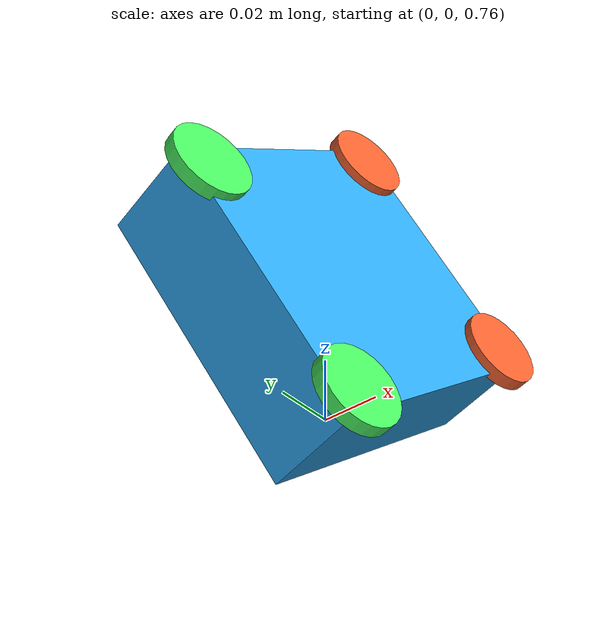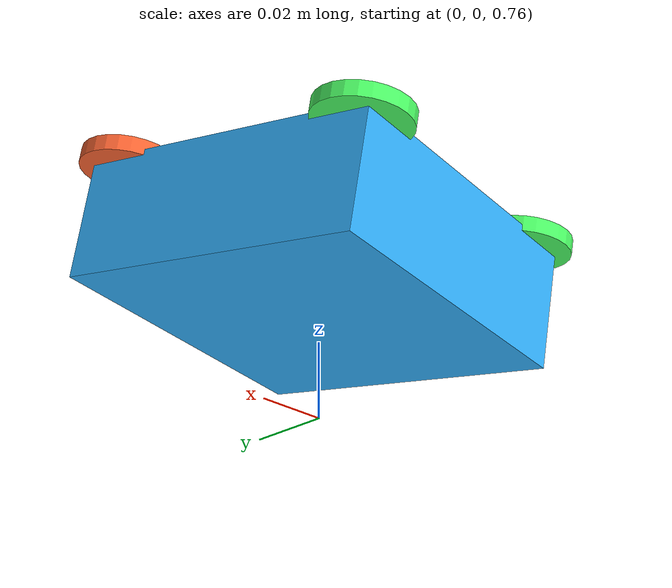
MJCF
<mujoco model="sils_demo_drop">
  <option timestep="0.002" gravity="0 0 -9.81" integrator="RK4"/>

  <visual>
    <headlight ambient="0.4 0.4 0.4"/>
    <global offwidth="1280" offheight="720"/>
  </visual>

  <asset>
    <texture name="grid" type="2d" builtin="checker" rgb1="0.2 0.3 0.4"
             rgb2="0.1 0.15 0.2" width="300" height="300"/>
    <material name="grid" texture="grid" texrepeat="8 8" reflectance="0.1"/>
  </asset>

  <worldbody>
    <light pos="0 0 2" dir="0 0 -1"/>
    <geom name="ground" type="plane" size="2 2 0.1" material="grid"/>

    <!-- Dropped tilted from 0.8 m so it tumbles on landing -->
    <!-- 0.8 m から傾けて落とし、着地で転がる -->
    <body name="drone" pos="0 0 0.8" euler="35 20 0">
      <freejoint name="root"/>
      <geom name="body" type="box" size="0.0408 0.0408 0.0155" mass="0.036"
            rgba="0.2 0.7 1.0 1" friction="0.7 0.02 0.002"/>
      <!-- Little markers at the 4 rotor corners (visual only) -->
      <!-- 4ロータ隅の小マーカー（見た目だけ） -->
      <geom type="cylinder" pos=" 0.035  0.035 0.016" size="0.012 0.002" rgba="1 0.4 0.2 1"/>
      <geom type="cylinder" pos=" 0.035 -0.035 0.016" size="0.012 0.002" rgba="1 0.4 0.2 1"/>
      <geom type="cylinder" pos="-0.035  0.035 0.016" size="0.012 0.002" rgba="0.3 1 0.4 1"/>
      <geom type="cylinder" pos="-0.035 -0.035 0.016" size="0.012 0.002" rgba="0.3 1 0.4 1"/>
    </body>
  </worldbody>
</mujoco>
